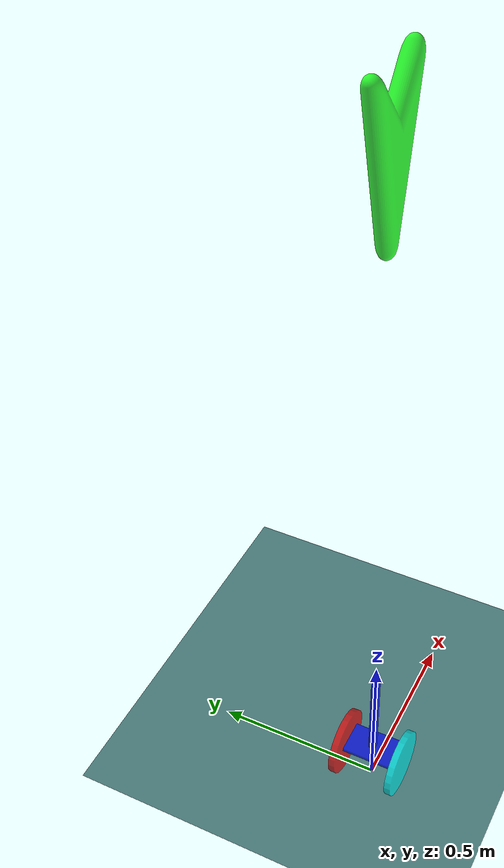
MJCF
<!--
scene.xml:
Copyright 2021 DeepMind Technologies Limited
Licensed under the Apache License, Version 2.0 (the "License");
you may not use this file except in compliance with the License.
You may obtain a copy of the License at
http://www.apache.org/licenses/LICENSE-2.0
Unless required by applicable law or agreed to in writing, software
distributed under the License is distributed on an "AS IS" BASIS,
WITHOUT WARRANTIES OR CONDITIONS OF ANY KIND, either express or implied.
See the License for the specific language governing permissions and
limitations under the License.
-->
<!--./simulate ../../../Desktop/phd/bambi/kez_algos/pytorch_imps/good/bl1/assets/bl1.xml-->
<mujoco model="hover1">
    <include file="scene.xml"/>
    <compiler angle="degree" inertiafromgeom="true" coordinate="local"/>
    <option integrator="RK4" iterations="50" solver="PGS" timestep="0.01"/>
    <size nkey="5" nuser_geom="1"/>

    <default>

        <default class="controlled_joint">
            <motor gear="30" ctrllimited="true" ctrlrange="-1 1"/>
            <joint armature="0.02" damping="5" pos="0 0 0" limited="false" type="hinge" axis="0 0 1"/>
            <geom conaffinity="1" condim="1" contype="1" margin="0.001" material="geom" pos="0 0 0" type="mesh" rgba="1 0 0 1"/>
		</default>

    </default>

    <asset>
        <texture builtin="flat" height="1278" mark="cross" markrgb="1 1 1" name="texgeom" random="0.01" rgb1="0.8 0.6 0.4" rgb2="0.8 0.6 0.4" type="cube" width="127"/>
        <material name="geom" texture="texgeom" texuniform="true"/>
    </asset>

    <worldbody>

        <body name="torso" pos="0 0 .135" euler="0 0 0">
            <joint armature="0" damping="0" limited="false" name="root_1" pos="0 0 0" stiffness="0" type="free"/>
            <geom name="aluminium_plate" pos="0 0 -0.005" size=".05 0.075 0.005" type="box" rgba="0 0 1 0.7"/>
            <geom name="rod" pos="0 0 0.15" size=".01 .01 .15" type="box" rgba="0 0 1 0.7"/>

            <body name = "FR_hip" pos="0. -0.09 -0.033" euler="-90 0 0">
                <joint class="controlled_joint" name="dynamixel_1"/>
                <geom class="controlled_joint" type="cylinder" size="0.1 0.01" rgba="0. 1. 1. 0.7"/>
            </body>

            <body name = "FL_hip" pos="0. 0.09 -0.033" euler="-90 180 0">
                <joint class="controlled_joint" name="dynamixel_2"/>
                <geom class="controlled_joint" type="cylinder" size="0.1 0.01" rgba="1. 0. 0. 0.7"/>
            </body>

        </body>

    </worldbody>

    <actuator>
        <motor class="controlled_joint" joint="dynamixel_1" name="FR"/>
        <motor class="controlled_joint" joint="dynamixel_2"  gear="-30" name="FL"/>
    </actuator>

    <sensor>
        <actuatorpos actuator="FL" noise="0"/>  <!--remember to x2 and modulus 360-->
        <actuatorpos actuator="FR" noise="0"/>  <!--remember to x2 and modulus 360-->
        <actuatorvel actuator="FL" noise="0"/>
        <actuatorvel actuator="FR" noise="0"/>

        <gyro name="gyro" site="b0" noise="0" />
        <framequat name="quatl" objname="torso" objtype="body" />
        <framepos name="botpos" objname="bottom" objtype="geom" />
        <framepos name="toppos" objname="top" objtype="geom" />
    </sensor> -->

</mujoco>

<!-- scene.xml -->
<mujoco>
  <compiler meshdir="" texturedir=""/>
  <statistic extent="1.5" meansize=".05"/>
  <option timestep="0.005" jacobian="sparse"/>

  <visual>
    <rgba haze="0.15 0.25 0.35 1"/>
    <quality shadowsize="4096"/>
    <map stiffness="700" shadowscale="0.5" fogstart="10" fogend="15" zfar="40" haze="0.3"/>
  </visual>

  <asset>
    <texture type="skybox" builtin="gradient" rgb1="0.1 0.1 0.2" rgb2="0.0 0.0 0.0" width="512" height="512"/>
    <texture name="texplane" type="2d" builtin="checker" rgb1=".2 .4 .4" rgb2=".4 0.6 0.6"
      width="512" height="512" mark="cross" markrgb="8 .8 .8"/>

    <texture name="texgoal" type="2d" builtin="checker" rgb1="0 0 0" rgb2="1 1 1"
      width="512" height="512" mark="cross" markrgb="8 .8 .8"/>

      <texture name="texcarpet" type="2d" file="carpet.png"/>
      <texture name="texsponge" type="2d" file="sponge.png"/>
      <texture name="texmarble" type="cube" file="marble.png"/>

      <material name="matplane" reflectance="0.3" texture="texplane" texrepeat="1 1" texuniform="true"/>
      <material name="matgoal" reflectance="0.3" texture="texgoal" texrepeat="10 10" texuniform="true"/>
      <material name="matcarpet" texture="texcarpet"/>
      <material name="matsponge" texture="texsponge" specular="0.3"/>
      <material name="matmarble" texture="texmarble" rgba=".7 .7 .7 1"/>

      <mesh name="wheel" file="wheel2.stl" scale="0.001 0.001 0.001"/>
      <mesh name="arrow" file="arrow.stl" scale="0.005 0.005 0.005"/>
  </asset>

  <default>
      <joint limited="false" damping="1" armature="0"/>
      <motor ctrlrange="-1. 1." ctrllimited="true"/>

      <default class="bearing">
          <joint pos="0 0 0" limited="false" damping="0.01" armature="0.01" type="hinge" axis="0 1 0"/>
          <geom pos="0 0 0" conaffinity="0" rgba="1 0 1 0.7" friction="0 0 0"/>
      </default>

      <default class="target_slider">
          <joint armature="10000" damping="10000" limited="true" pos="0 0 0" range="-1000 1000" ref=".1" stiffness="0" type="slide"/>
          <geom conaffinity="0" pos="0 0 0" rgba=" 1 0 1 0.5" size="0.005" type="sphere"/>
      </default>
  </default>

  <worldbody>

    <light directional="true" diffuse=".4 .4 .4" specular="0.1 0.1 0.1" pos="0 0 5.0" dir="0 0 -1" castshadow="false"/>
    <light directional="true" diffuse=".6 .6 .6" specular="0.2 0.2 0.2" pos="0 0 4" dir="0 0 -1"/>
    <geom contype="1" name="floor" pos="0 0 0" size="0 0 .25" type="plane" material="matplane" condim="6" solimp="0 0.95 0.001 0.5 2" solref="0.02 1" margin="0"/>

    <body mocap="true" pos="0 0 2">
    <geom euler="-90 0 0" type="mesh" conaffinity="0" contype="0" mesh="arrow" rgba="0 1 0 0.8" />
-->
   </body>
  </worldbody>
</mujoco>
